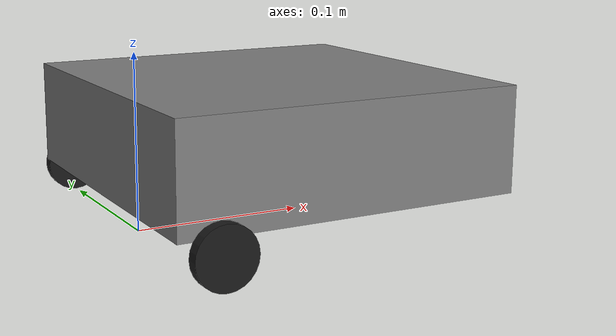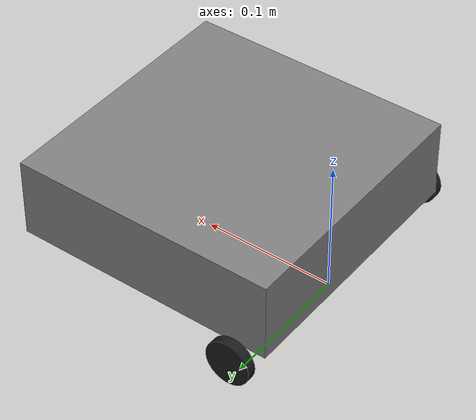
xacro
<?xml version="1.0"?>
<robot xmlns:xacro="http://www.ros.org/wiki/xacro" name="sonar_bot">

  <!--        PARAMETERS (metres)     -->

  <!-- Chassis -->
  <xacro:property name="chassis_length"          value="0.200"/>
  <xacro:property name="chassis_width"           value="0.200"/>
  <xacro:property name="chassis_height"          value="0.060"/>
  <xacro:property name="chassis_floor_clearance" value="0.023"/>

  <!-- Drive wheels (JGA12-N20, 34 mm dia, 7 mm wide) -->
  <xacro:property name="wheel_radius" value="0.017"/>
  <xacro:property name="wheel_width"  value="0.007"/>
  <xacro:property name="track_width"  value="0.220"/>

  <!-- How far the drive axle sits forward of the chassis rear edge -->
  <xacro:property name="axle_inset" value="0.020"/>

  <!-- Front caster (steel ball, modelled as low-friction sphere) -->
  <xacro:property name="caster_radius" value="0.008"/>
  <xacro:property name="caster_inset"  value="0.020"/>

  <!-- Sensor: distance below top of chassis to sensor centre -->
  <xacro:property name="sensor_below_top" value="0.030"/>

  <!-- Mass estimates (kg) — approximate, tuned for Gazebo stability -->
  <xacro:property name="chassis_mass" value="1.0"/>
  <xacro:property name="wheel_mass"   value="0.05"/>
  <xacro:property name="caster_mass"  value="0.02"/>

  <!--     COORDINATE CONVENTION      -->

  <!--         BASE FOOTPRINT         -->
  <link name="base_footprint"/>

  <joint name="base_footprint_joint" type="fixed">
    <parent link="base_footprint"/>
    <child  link="base_link"/>
    <origin xyz="0 0 0" rpy="0 0 0"/>
  </joint>

  <!--           BASE LINK            -->
  <link name="base_link">
    <visual>
      <geometry>
        <box size="${chassis_length} ${chassis_width} ${chassis_height}"/>
      </geometry>
      <origin xyz="${chassis_length/2 - axle_inset} 0 ${chassis_floor_clearance + chassis_height/2}"
              rpy="0 0 0"/>
      <material name="chassis_grey">
        <color rgba="0.5 0.5 0.5 1.0"/>
      </material>
    </visual>
    <collision>
      <geometry>
        <box size="${chassis_length} ${chassis_width} ${chassis_height}"/>
      </geometry>
      <origin xyz="${chassis_length/2 - axle_inset} 0 ${chassis_floor_clearance + chassis_height/2}"
              rpy="0 0 0"/>
    </collision>
    <inertial>
      <mass value="${chassis_mass}"/>
      <origin xyz="${chassis_length/2 - axle_inset} 0 ${chassis_floor_clearance + chassis_height/2}"
              rpy="0 0 0"/>
      <!-- Box inertia: Ixx = m/12*(w^2+h^2), Iyy = m/12*(l^2+h^2), Izz = m/12*(l^2+w^2) -->
      <inertia ixx="${chassis_mass/12*(chassis_width**2 + chassis_height**2)}"
               ixy="0" ixz="0"
               iyy="${chassis_mass/12*(chassis_length**2 + chassis_height**2)}"
               iyz="0"
               izz="${chassis_mass/12*(chassis_length**2 + chassis_width**2)}"/>
    </inertial>
  </link>

  <!--          WHEEL MACRO           -->
  <!--
    Wheels are cylinders whose default axis is z.
    Rotated pi/2 around x so the cylinder axis aligns with y (the spin axis).
    Joint axis is (0 1 0) — wheel spins around y.
  -->
  <xacro:macro name="wheel" params="prefix y_reflect">
    <link name="${prefix}_wheel">
      <visual>
        <geometry>
          <cylinder radius="${wheel_radius}" length="${wheel_width}"/>
        </geometry>
        <origin xyz="0 0 0" rpy="${pi/2} 0 0"/>
        <material name="wheel_black">
          <color rgba="0.1 0.1 0.1 1.0"/>
        </material>
      </visual>
      <collision>
        <geometry>
          <cylinder radius="${wheel_radius}" length="${wheel_width}"/>
        </geometry>
        <origin xyz="0 0 0" rpy="${pi/2} 0 0"/>
      </collision>
      <inertial>
        <mass value="${wheel_mass}"/>
        <origin xyz="0 0 0" rpy="0 0 0"/>
        <!-- Cylinder inertia (axis along y after rotation):
             Ixx = Izz = m/12*(3r^2 + h^2), Iyy = m*r^2/2 -->
        <inertia ixx="${wheel_mass/12*(3*wheel_radius**2 + wheel_width**2)}"
                 ixy="0" ixz="0"
                 iyy="${wheel_mass * wheel_radius**2 / 2}"
                 iyz="0"
                 izz="${wheel_mass/12*(3*wheel_radius**2 + wheel_width**2)}"/>
      </inertial>
    </link>

    <joint name="${prefix}_wheel_joint" type="continuous">
      <parent link="base_link"/>
      <child  link="${prefix}_wheel"/>
      <origin xyz="0 ${y_reflect * track_width/2} ${wheel_radius}" rpy="0 0 0"/>
      <axis xyz="0 1 0"/>
    </joint>
  </xacro:macro>

  <xacro:wheel prefix="left"  y_reflect="1"/>
  <xacro:wheel prefix="right" y_reflect="-1"/>

  <!--         FRONT CASTER           -->
  <!--
    Modelled as a fixed sphere touching the ground.
    Gazebo friction coefficients will be set near zero later
    to approximate the omnidirectional ball transfer.
  -->
  <link name="caster_wheel">
    <visual>
      <geometry>
        <sphere radius="${caster_radius}"/>
      </geometry>
      <material name="caster_silver">
        <color rgba="0.8 0.8 0.8 1.0"/>
      </material>
    </visual>
    <collision>
      <geometry>
        <sphere radius="${caster_radius}"/>
      </geometry>
    </collision>
    <inertial>
      <mass value="${caster_mass}"/>
      <origin xyz="0 0 0" rpy="0 0 0"/>
      <!-- Sphere inertia: I = 2/5 * m * r^2 -->
      <inertia ixx="${2.0/5 * caster_mass * caster_radius**2}"
               ixy="0" ixz="0"
               iyy="${2.0/5 * caster_mass * caster_radius**2}"
               iyz="0"
               izz="${2.0/5 * caster_mass * caster_radius**2}"/>
    </inertial>
  </link>

  <joint name="caster_joint" type="fixed">
    <parent link="base_link"/>
    <child  link="caster_wheel"/>
    <origin xyz="${chassis_length - axle_inset - caster_inset} 0 ${caster_radius}"
            rpy="0 0 0"/>
  </joint>

  <!--         SENSOR FRAME           -->
  <link name="sensor_frame"/>

  <joint name="sensor_joint" type="fixed">
    <parent link="base_link"/>
    <child  link="sensor_frame"/>
    <origin xyz="${chassis_length - axle_inset} 0 ${chassis_floor_clearance + chassis_height - sensor_below_top}"
            rpy="0 0 0"/>
  </joint>

</robot>
